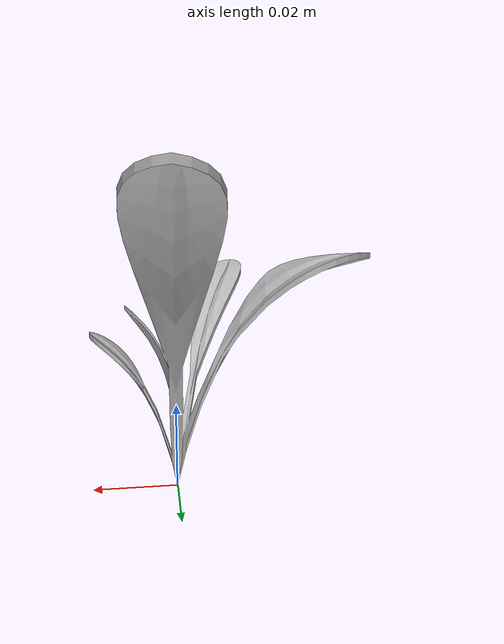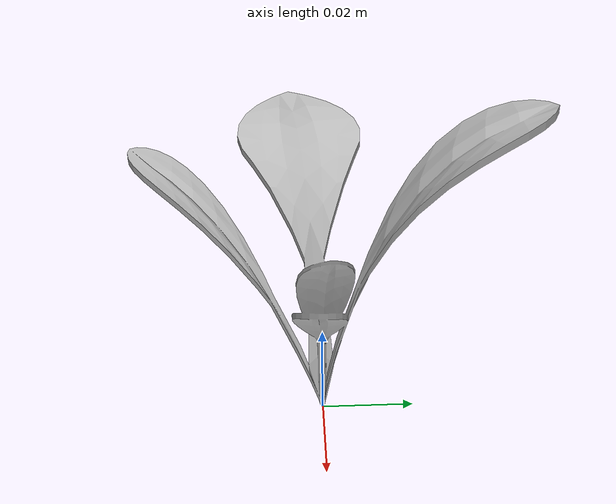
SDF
<sdf version="1.6">
  <model name="sugar_beet_59">
    <static>true</static>
    <link name="body">
      <visual name="visual">
        <geometry>
          <mesh>
            <uri>file:///sugar_beet_59/media/sugar_beet.dae</uri>
          </mesh>
        </geometry>
      </visual>
    </link>
  </model>
</sdf>
